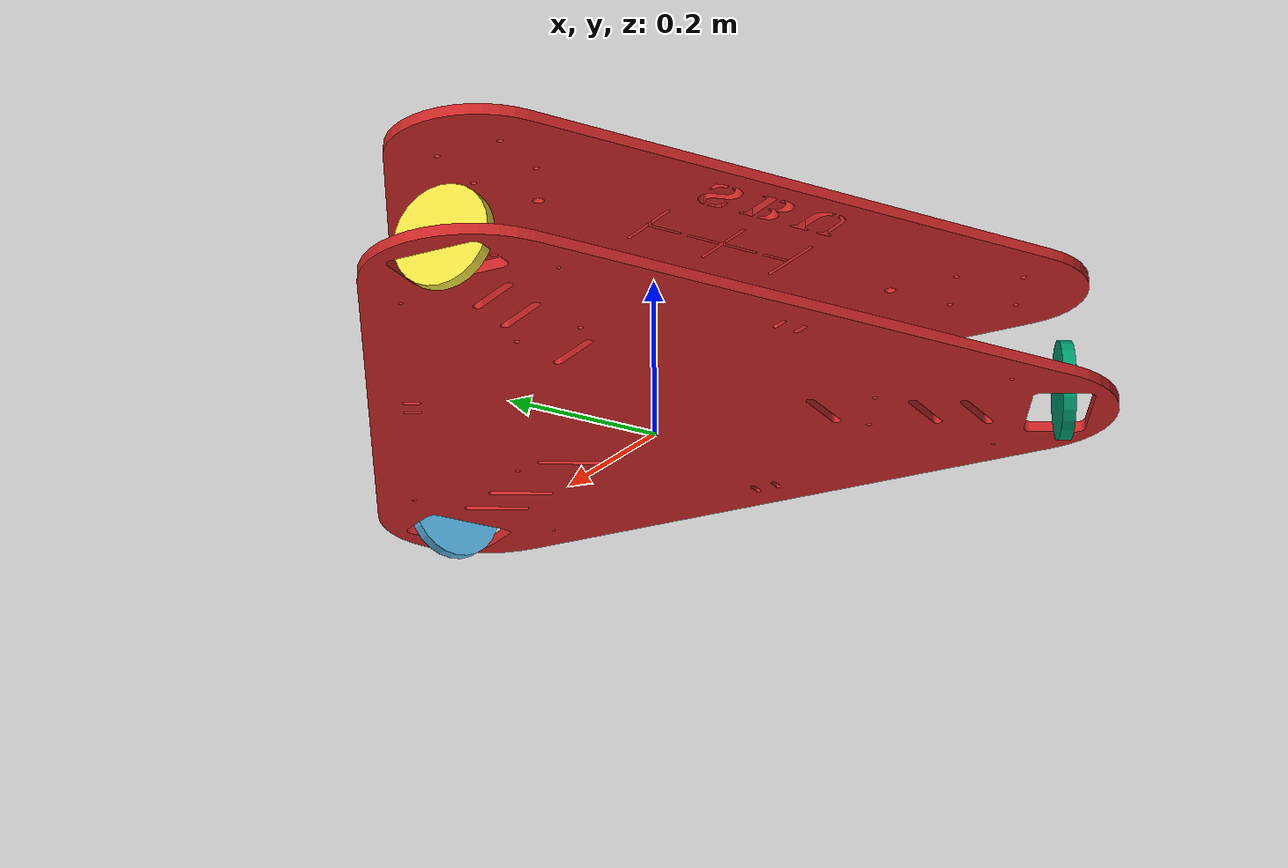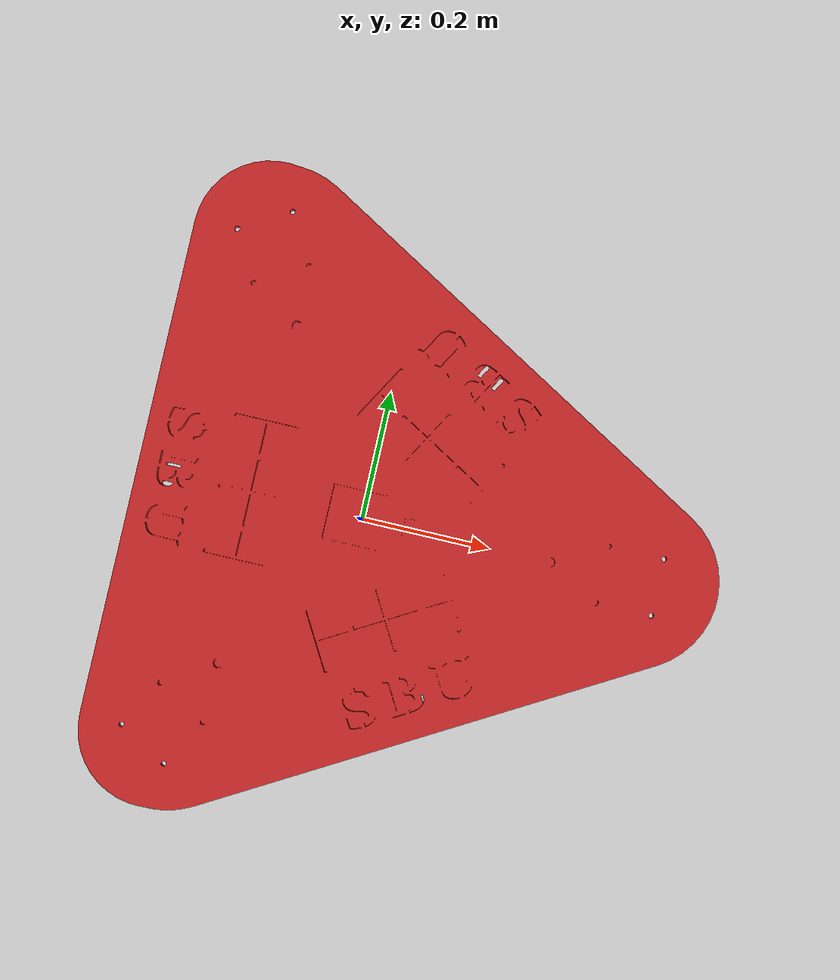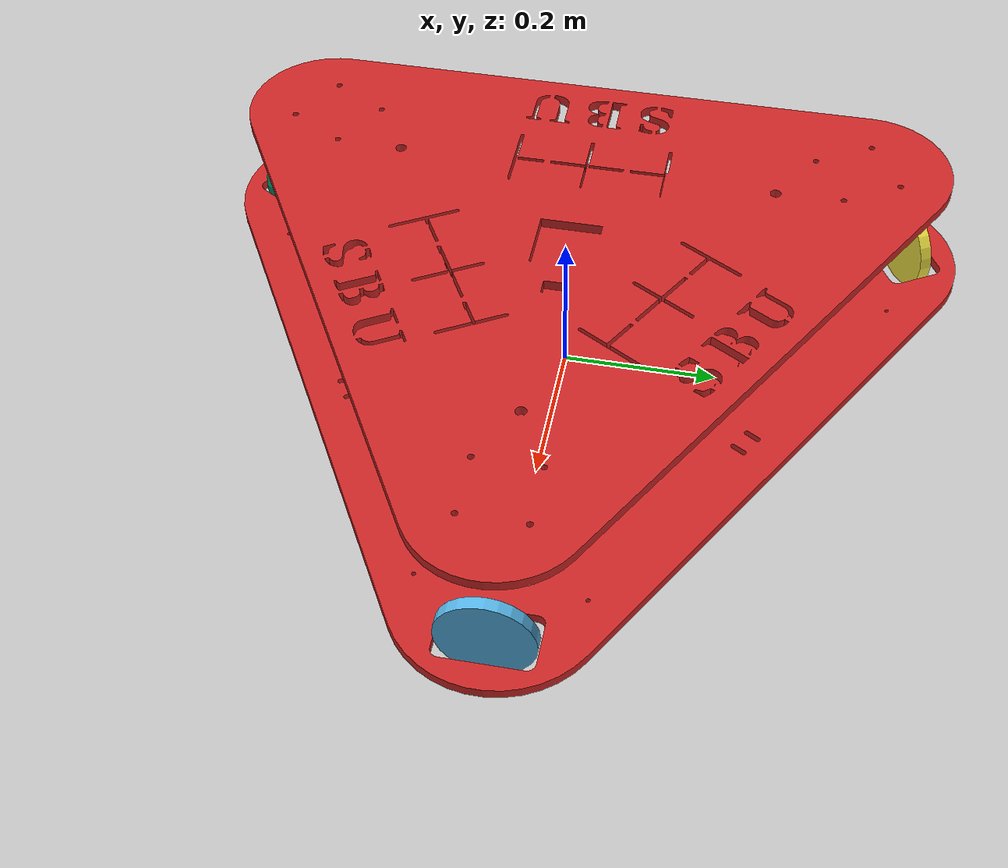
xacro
<?xml version="1.0"?>
<robot xmlns:xacro="http://www.ros.org/wiki/xacro" name="robot">

 <xacro:property name="base_z" value="${rob_scale*0.52}"/>
  <xacro:property name="M_PI" value="3.1415926535897931" />
 <xacro:property name="rob_scale" value="0.225"/>
<xacro:property name="right_wheel_x" value="${rob_scale*2.195}"/>
<xacro:property name="right_wheel_y" value="${rob_scale*0}"/>
<xacro:property name="right_wheel_z" value="${rob_scale*0.27}"/>

<xacro:property name="right_wheel_length" value="${rob_scale*0.07}"/>
<xacro:property name="right_wheel_radius" value="${rob_scale*0.27}"/>
<xacro:property name="right_wheel_mass" value="${rob_scale}"/>

<xacro:property name="left_wheel_x" value="${rob_scale*-1.10000}"/>
<xacro:property name="left_wheel_y" value="${rob_scale*-1.9}"/>
<xacro:property name="left_wheel_z" value="${rob_scale*0.27}"/>

<xacro:property name="left_wheel_length" value="${rob_scale*0.07}"/>
<xacro:property name="left_wheel_radius" value="${rob_scale*0.27}"/>
<xacro:property name="left_wheel_mass" value="${rob_scale}"/>

<xacro:property name="left2_wheel_x" value="${rob_scale*-1.10000}"/>
<xacro:property name="left2_wheel_y" value="${rob_scale*1.9}"/>
<xacro:property name="left2_wheel_z" value="${rob_scale*0.27}"/>

<xacro:property name="left2_wheel_length" value="${rob_scale*0.07}"/>
<xacro:property name="left2_wheel_radius" value="${rob_scale*0.27}"/>
<xacro:property name="left2_wheel_mass" value="${rob_scale}"/>

   <!--Interial macros-->
  <xacro:macro name="cylinder_inertia" params="m r h">
    <inertial>
      <mass value="${m}"/>
      <inertia ixx="${m*(3*r*r+h*h)/12}" ixy = "0" ixz = "0" iyy="${m*(3*r*r+h*h)/12}" iyz = "0" izz="${m*r*r/2}"/>
    </inertial>
  </xacro:macro>

  <xacro:macro name="box_inertia" params="m w h d">
    <inertial>
      <mass value="${m}"/>
      <inertia ixx="${m / 12.0 * (d*d + h*h)}" ixy="0.0" ixz="0.0" iyy="${m / 12.0 * (w*w + h*h)}" iyz="0.0" izz="${m / 12.0 * (w*w + d*d)}"/>
    </inertial>
  </xacro:macro>

  <link name="base_link">
    <inertial>
      <mass value="200"/>
      <origin xyz="0 0 ${base_z}" rpy="0 0 3.14"/>
      <inertia ixx="0.738" ixy="0" ixz="0" iyy="0.738" iyz="-0.000000" izz="1.304"/>
    </inertial>
	<visual>
	<origin xyz="0 0 ${base_z}" rpy="0 0 3.14"/>
	<geometry>
        <mesh filename="package://rob_pkg/meshes/two_plate_s.dae" />
      </geometry>
      <material name="red"/>
    </visual>
    <collision >
	<origin xyz="0 0 ${base_z}" rpy="0 0 3.14"/>
      <geometry>
        <mesh filename="package://rob_pkg/meshes/two_plate_s.dae"   />
      </geometry>
    </collision>

  </link>

    <link name="link_right_wheel">
      <mass value="${right_wheel_mass}"/>
      <origin rpy="0 ${M_PI/2} 0" xyz="${right_wheel_x} ${right_wheel_y} ${right_wheel_z}"/>
    <collision name="link_right_wheel_collision">
	<geometry>
	 <cylinder length="${right_wheel_length}" radius="${right_wheel_radius}" />
	</geometry>
	       <surface>
                <bounce>
                    <restitution_coefficient>.2</restitution_coefficient>
                </bounce>
                <friction>
                  <ode>
                      <mu>1000000</mu>
                      <mu2>100</mu2>
                      <fdir1>1 0 0</fdir1>
                      <slip1> 0</slip1>
                      <slip2>0</slip2>
                  </ode>
                </friction>
                <contact>
                  <ode/>
                </contact>
            </surface>
    </collision>
    <visual name="link_right_wheel_visual">
	<geometry>
	 <cylinder length="${right_wheel_length}" radius="${right_wheel_radius}" />
	</geometry>
    </visual>
 <xacro:cylinder_inertia m="${right_wheel_mass}" r="${right_wheel_radius}" h="${right_wheel_length}"/>
  </link>

    <joint name="joint_right_wheel" type="continuous">
	<origin rpy="0 ${M_PI/2} 0" xyz="${right_wheel_x} 0 ${right_wheel_z}"/>
    <child link="link_right_wheel"/>
    <parent link="base_link"/>
    <axis rpy="0 0 0" xyz="0 0 1"/>
  </joint>

    <link name="link_left_wheel">
      <mass value="${left_wheel_mass}"/>
      <origin rpy="0 ${M_PI/2} 1.0472" xyz="${left_wheel_x} ${left_wheel_y} ${left_wheel_z}"/>
    <collision name="link_left_wheel_collision">
	<geometry>
	 <cylinder length="${left_wheel_length}" radius="${left_wheel_radius}" />
	</geometry>
    </collision>
    <visual name="link_left_wheel_visual">
	<geometry>
	 <cylinder length="${left_wheel_length}" radius="${left_wheel_radius}" />
	</geometry>
	       <surface>
        <bounce>
            <restitution_coefficient>.2</restitution_coefficient>
        </bounce>
        <friction>
          <ode>
              <mu>1000000</mu>
              <mu2>100</mu2>
              <fdir1>1 0 0</fdir1>
              <slip1> 0</slip1>
              <slip2>0</slip2>
          </ode>
        </friction>
        <contact>
          <ode/>
        </contact>
    </surface>
    </visual>
    <xacro:cylinder_inertia m="${right_wheel_mass}" r="${right_wheel_radius}" h="${right_wheel_length}"/>
  </link>

  <joint name="joint_left_wheel" type="continuous">
  <origin rpy="0 ${M_PI/2} 1.0472" xyz="${left_wheel_x} ${left_wheel_y} ${left_wheel_z}"/>
    <child link="link_left_wheel"/>
    <parent link="base_link"/>
    <axis rpy="0 0 0" xyz="0 0 1"/>
  </joint>

    <link name="link_left2_wheel">
      <mass value="${left2_wheel_mass}"/>
      <origin rpy="0 ${M_PI/2} 2.0944" xyz="${left2_wheel_x} ${left2_wheel_y} ${left2_wheel_z}"/>
    <collision name="link_left2_wheel_collision">
	<geometry>
	 <cylinder length="${left2_wheel_length}" radius="${left2_wheel_radius}" />
	</geometry>
    </collision>
    <visual name="link_left2_wheel_visual">
	<geometry>
	 <cylinder length="${left2_wheel_length}" radius="${left2_wheel_radius}" />
	</geometry>
	       <surface>
        <bounce>
            <restitution_coefficient>.2</restitution_coefficient>
        </bounce>
        <friction>
          <ode>
              <mu>1000000</mu>
              <mu2>100</mu2>
              <fdir1>1 0 0</fdir1>
              <slip1> 0</slip1>
              <slip2>0</slip2>
          </ode>
        </friction>
        <contact>
          <ode/>
        </contact>
    </surface>
    </visual>
    <xacro:cylinder_inertia m="${right_wheel_mass}" r="${right_wheel_radius}" h="${right_wheel_length}"/>
  </link>

  <joint name="joint_left2_wheel" type="continuous">
  <origin rpy="0 ${M_PI/2} 2.0944" xyz="${left2_wheel_x} ${left2_wheel_y} ${left2_wheel_z}"/>
    <child link="link_left2_wheel"/>
    <parent link="base_link"/>
    <axis rpy="0 0 0" xyz="0 0 1"/>
  </joint>

</robot>
